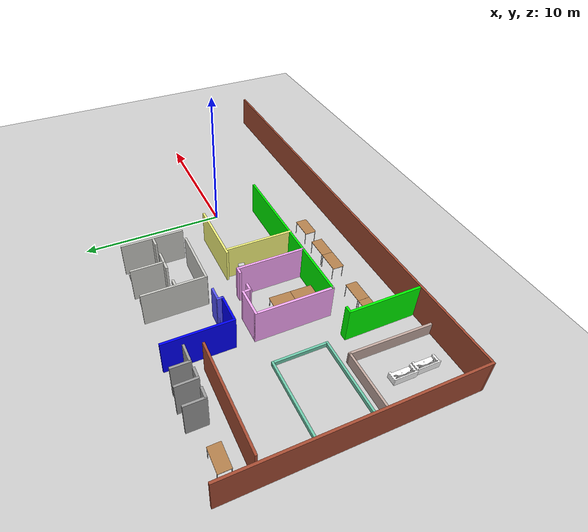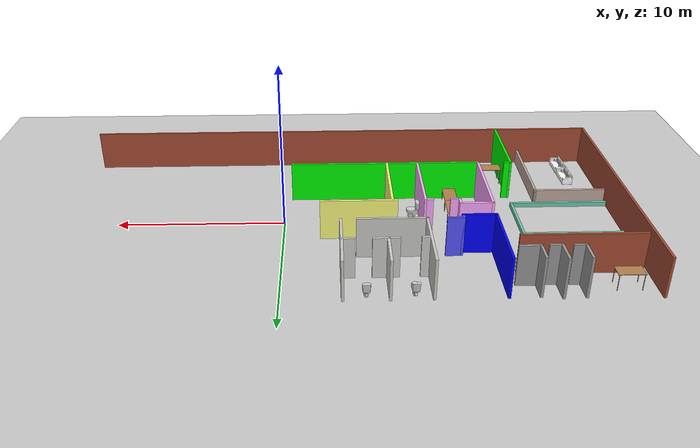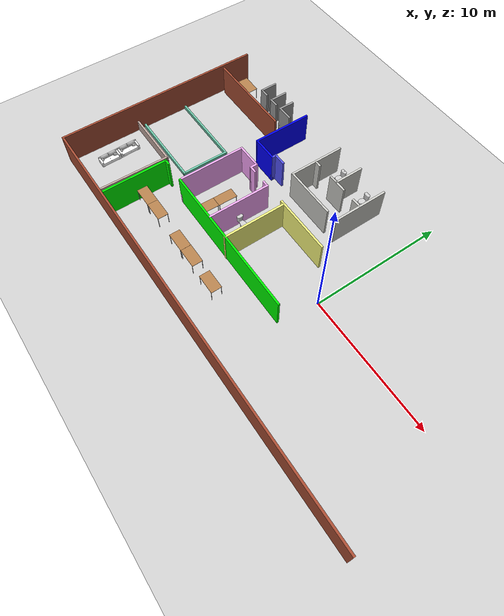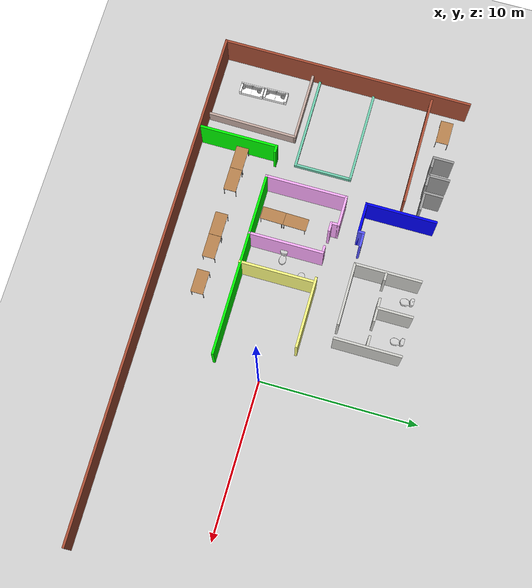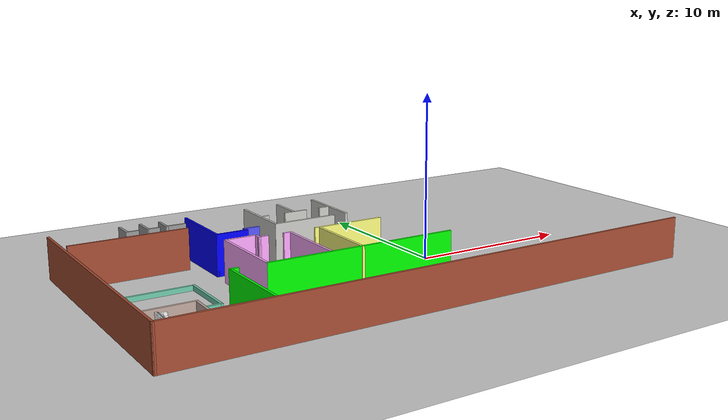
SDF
<sdf version="1.7">
 <world name="default">
  <model name="ground_plane">
   <static>1</static>
   <link name="link">
    <collision name="collision">
     <geometry><plane><normal>0 0 1</normal><size>100 100</size></plane></geometry>
     <surface>
      <contact><collide_bitmask>65535</collide_bitmask></contact>
      <friction><ode><mu>100</mu><mu2>50</mu2></ode></friction>
     </surface>
    </collision>
    <visual name="visual">
     <cast_shadows>0</cast_shadows>
     <geometry><plane><normal>0 0 1</normal><size>100 100</size></plane></geometry>
     <material>
      <script><uri>file://media/materials/scripts/gazebo.material</uri><name>Gazebo/Grey</name></script>
     </material>
    </visual>
   </link>
  </model>
  <model name="finalfinal">
   <pose>-1.52945 0.041943 0 0 -0 0</pose>
   <link name="Wall_142">
    <collision name="Wall_142_Collision">
     <geometry><box><size>5 0.15 2.5</size></box></geometry>
     <pose>0 0 1.25 0 -0 0</pose>
    </collision>
    <visual name="Wall_142_Visual">
     <pose>0 0 1.25 0 -0 0</pose>
     <geometry><box><size>5 0.15 2.5</size></box></geometry>
     <material>
      <script><uri>file://media/materials/scripts/gazebo.material</uri><name>Gazebo/Grey</name></script>
      <ambient>0 1 0 1</ambient>
     </material>
     <meta><layer>0</layer></meta>
    </visual>
    <pose>-12.5694 -5.35027 0 0 -0 1.5708</pose>
   </link>
   <link name="Wall_144">
    <collision name="Wall_144_Collision">
     <geometry><box><size>0.5 0.15 2.5</size></box></geometry>
     <pose>0 0 1.25 0 -0 0</pose>
    </collision>
    <visual name="Wall_144_Visual">
     <pose>0 0 1.25 0 -0 0</pose>
     <geometry><box><size>0.5 0.15 2.5</size></box></geometry>
     <material>
      <script><uri>file://media/materials/scripts/gazebo.material</uri><name>Gazebo/Grey</name></script>
      <ambient>0 1 0 1</ambient>
     </material>
     <meta><layer>0</layer></meta>
    </visual>
    <pose>-12.3944 -2.92527 0 0 -0 0</pose>
   </link>
   <link name="Wall_15">
    <collision name="Wall_15_Collision">
     <geometry><box><size>6.14079 0.15 0.3</size></box></geometry>
     <pose>0 0 0.15 0 -0 0</pose>
    </collision>
    <visual name="Wall_15_Visual">
     <pose>0 0 0.15 0 -0 0</pose>
     <geometry><box><size>6.14079 0.15 0.3</size></box></geometry>
     <material>
      <script><uri>file://media/materials/scripts/gazebo.material</uri><name>Gazebo/Grey</name></script>
      <ambient>0.435294 0.796078 0.67451 1</ambient>
     </material>
     <meta><layer>0</layer></meta>
    </visual>
    <pose>-15.5451 -1.65394 0 0 -0 0</pose>
   </link>
   <link name="Wall_16">
    <collision name="Wall_16_Collision">
     <geometry><box><size>3.75 0.15 0.3</size></box></geometry>
     <pose>0 0 0.15 0 -0 0</pose>
    </collision>
    <visual name="Wall_16_Visual">
     <pose>0 0 0.15 0 -0 0</pose>
     <geometry><box><size>3.75 0.15 0.3</size></box></geometry>
     <material>
      <script><uri>file://media/materials/scripts/gazebo.material</uri><name>Gazebo/Grey</name></script>
      <ambient>0.435294 0.796078 0.67451 1</ambient>
     </material>
     <meta><layer>0</layer></meta>
    </visual>
    <pose>-12.5496 0.146057 0 0 -0 1.5708</pose>
   </link>
   <link name="Wall_17">
    <collision name="Wall_17_Collision">
     <geometry><box><size>6 0.15 0.3</size></box></geometry>
     <pose>0 0 0.15 0 -0 0</pose>
    </collision>
    <visual name="Wall_17_Visual">
     <pose>0 0 0.15 0 -0 0</pose>
     <geometry><box><size>6 0.15 0.3</size></box></geometry>
     <material>
      <script><uri>file://media/materials/scripts/gazebo.material</uri><name>Gazebo/Grey</name></script>
      <ambient>0.435294 0.796078 0.67451 1</ambient>
     </material>
     <meta><layer>0</layer></meta>
    </visual>
    <pose>-15.4746 1.94606 0 0 -0 3.14159</pose>
   </link>
   <link name="Wall_19">
    <collision name="Wall_19_Collision">
     <geometry><box><size>7 0.15 2.5</size></box></geometry>
     <pose>0 0 1.25 0 -0 0</pose>
    </collision>
    <visual name="Wall_19_Visual">
     <pose>0 0 1.25 0 -0 0</pose>
     <geometry><box><size>7 0.15 2.5</size></box></geometry>
     <material>
      <script><uri>file://media/materials/scripts/gazebo.material</uri><name>Gazebo/Bricks</name></script>
      <ambient>1 1 1 1</ambient>
     </material>
     <meta><layer>0</layer></meta>
    </visual>
    <pose>-14.7516 5.60406 0 0 -0 0</pose>
   </link>
   <link name="Wall_193">
    <collision name="Wall_193_Collision">
     <geometry><box><size>4.75 0.15 2.5</size></box></geometry>
     <pose>0 0 1.25 0 -0 0</pose>
    </collision>
    <visual name="Wall_193_Visual">
     <pose>0 0 1.25 0 -0 0</pose>
     <geometry><box><size>4.75 0.15 2.5</size></box></geometry>
     <material>
      <script><uri>file://media/materials/scripts/gazebo.material</uri><name>Gazebo/Grey</name></script>
      <ambient>1 1 0.498039 1</ambient>
     </material>
     <meta><layer>0</layer></meta>
    </visual>
    <pose>-4.78968 -0.712961 0 0 -0 1.5708</pose>
   </link>
   <link name="Wall_195">
    <collision name="Wall_195_Collision">
     <geometry><box><size>4.5 0.15 2.5</size></box></geometry>
     <pose>0 0 1.25 0 -0 0</pose>
    </collision>
    <visual name="Wall_195_Visual">
     <pose>0 0 1.25 0 -0 0</pose>
     <geometry><box><size>4.5 0.15 2.5</size></box></geometry>
     <material>
      <script><uri>file://media/materials/scripts/gazebo.material</uri><name>Gazebo/Grey</name></script>
      <ambient>1 1 0.498039 1</ambient>
     </material>
     <meta><layer>0</layer></meta>
    </visual>
    <pose>-2.85714 1.69353 0 0 -0 0</pose>
   </link>
   <link name="Wall_2">
    <collision name="Wall_2_Collision">
     <geometry><box><size>16.0748 0.15 2.5</size></box></geometry>
     <pose>0 0 1.25 0 -0 0</pose>
    </collision>
    <visual name="Wall_2_Visual">
     <pose>0 0 1.25 0 -0 0</pose>
     <geometry><box><size>16.0748 0.15 2.5</size></box></geometry>
     <material>
      <script><uri>file://media/materials/scripts/gazebo.material</uri><name>Gazebo/Bricks</name></script>
      <ambient>1 1 1 1</ambient>
     </material>
     <meta><layer>0</layer></meta>
    </visual>
    <pose>-18.5896 -0 0 0 -0 -1.57357</pose>
   </link>
   <link name="Wall_207">
    <collision name="Wall_207_Collision">
     <geometry><box><size>0.4 0.15 2.5</size></box></geometry>
     <pose>0 0 1.25 0 -0 0</pose>
    </collision>
    <visual name="Wall_207_Visual">
     <pose>0 0 1.25 0 -0 0</pose>
     <geometry><box><size>0.4 0.15 2.5</size></box></geometry>
     <material>
      <script><uri>file://media/materials/scripts/gazebo.material</uri><name>Gazebo/Grey</name></script>
      <ambient>1 0.666667 1 1</ambient>
     </material>
     <meta><layer>0</layer></meta>
    </visual>
    <pose>-6.95721 1.65482 0 0 -0 0</pose>
   </link>
   <link name="Wall_21">
    <collision name="Wall_21_Collision">
     <geometry><box><size>1.34125 0.15 2.5</size></box></geometry>
     <pose>0 0 1.25 0 -0 0</pose>
    </collision>
    <visual name="Wall_21_Visual">
     <pose>0 0 1.25 0 -0 0</pose>
     <geometry><box><size>1.34125 0.15 2.5</size></box></geometry>
     <material>
      <script><uri>file://media/materials/scripts/gazebo.material</uri><name>Gazebo/Grey</name></script>
      <ambient>1 1 1 1</ambient>
     </material>
     <meta><layer>0</layer></meta>
    </visual>
    <pose>-14.509 7.26554 0 0 -0 -1.5708</pose>
   </link>
   <link name="Wall_22">
    <collision name="Wall_22_Collision">
     <geometry><box><size>0.75 0.15 2.5</size></box></geometry>
     <pose>0 0 1.25 0 -0 0</pose>
    </collision>
    <visual name="Wall_22_Visual">
     <pose>0 0 1.25 0 -0 0</pose>
     <geometry><box><size>0.75 0.15 2.5</size></box></geometry>
     <material>
      <script><uri>file://media/materials/scripts/gazebo.material</uri><name>Gazebo/Grey</name></script>
      <ambient>1 1 1 1</ambient>
     </material>
     <meta><layer>0</layer></meta>
    </visual>
    <pose>-14.209 6.66991 0 0 -0 0</pose>
   </link>
   <link name="Wall_24">
    <collision name="Wall_24_Collision">
     <geometry><box><size>1.41739 0.15 2.5</size></box></geometry>
     <pose>0 0 1.25 0 -0 0</pose>
    </collision>
    <visual name="Wall_24_Visual">
     <pose>0 0 1.25 0 -0 0</pose>
     <geometry><box><size>1.41739 0.15 2.5</size></box></geometry>
     <material>
      <script><uri>file://media/materials/scripts/gazebo.material</uri><name>Gazebo/Grey</name></script>
      <ambient>1 1 1 1</ambient>
     </material>
     <meta><layer>0</layer></meta>
    </visual>
    <pose>-13.2695 7.27315 0 0 -0 -1.5588</pose>
   </link>
   <link name="Wall_25">
    <collision name="Wall_25_Collision">
     <geometry><box><size>0.75 0.15 2.5</size></box></geometry>
     <pose>0 0 1.25 0 -0 0</pose>
    </collision>
    <visual name="Wall_25_Visual">
     <pose>0 0 1.25 0 -0 0</pose>
     <geometry><box><size>0.75 0.15 2.5</size></box></geometry>
     <material>
      <script><uri>file://media/materials/scripts/gazebo.material</uri><name>Gazebo/Grey</name></script>
      <ambient>1 1 1 1</ambient>
     </material>
     <meta><layer>0</layer></meta>
    </visual>
    <pose>-12.9467 6.6395 0 0 -0 0</pose>
   </link>
   <link name="Wall_27">
    <collision name="Wall_27_Collision">
     <geometry><box><size>1.25 0.15 2.5</size></box></geometry>
     <pose>0 0 1.25 0 -0 0</pose>
    </collision>
    <visual name="Wall_27_Visual">
     <pose>0 0 1.25 0 -0 0</pose>
     <geometry><box><size>1.25 0.15 2.5</size></box></geometry>
     <material>
      <script><uri>file://media/materials/scripts/gazebo.material</uri><name>Gazebo/Grey</name></script>
      <ambient>1 1 1 1</ambient>
     </material>
     <meta><layer>0</layer></meta>
    </visual>
    <pose>-12.1364 7.21991 0 0 -0 -1.5708</pose>
   </link>
   <link name="Wall_278">
    <collision name="Wall_278_Collision">
     <geometry><box><size>11.75 0.15 2.5</size></box></geometry>
     <pose>0 0 1.25 0 -0 0</pose>
    </collision>
    <visual name="Wall_278_Visual">
     <pose>0 0 1.25 0 -0 0</pose>
     <geometry><box><size>11.75 0.15 2.5</size></box></geometry>
     <material>
      <script><uri>file://media/materials/scripts/gazebo.material</uri><name>Gazebo/Grey</name></script>
      <ambient>0 1 0 1</ambient>
     </material>
     <meta><layer>0</layer></meta>
    </visual>
    <pose>-4.71756 -2.97919 0 0 -0 0</pose>
   </link>
   <link name="Wall_28">
    <collision name="Wall_28_Collision">
     <geometry><box><size>1.25 0.15 2.5</size></box></geometry>
     <pose>0 0 1.25 0 -0 0</pose>
    </collision>
    <visual name="Wall_28_Visual">
     <pose>0 0 1.25 0 -0 0</pose>
     <geometry><box><size>1.25 0.15 2.5</size></box></geometry>
     <material>
      <script><uri>file://media/materials/scripts/gazebo.material</uri><name>Gazebo/Grey</name></script>
      <ambient>1 1 1 1</ambient>
     </material>
     <meta><layer>0</layer></meta>
    </visual>
    <pose>-11.5864 6.66991 0 0 -0 0</pose>
   </link>
   <link name="Wall_30">
    <collision name="Wall_30_Collision">
     <geometry><box><size>4.54 0.15 2.5</size></box></geometry>
     <pose>0 0 1.25 0 -0 0</pose>
    </collision>
    <visual name="Wall_30_Visual">
     <pose>0 0 1.25 0 -0 0</pose>
     <geometry><box><size>4.54 0.15 2.5</size></box></geometry>
     <material>
      <script><uri>file://media/materials/scripts/gazebo.material</uri><name>Gazebo/Grey</name></script>
      <ambient>0 0 1 1</ambient>
     </material>
     <meta><layer>0</layer></meta>
    </visual>
    <pose>-10.4483 5.62054 0 0 -0 -1.5708</pose>
   </link>
   <link name="Wall_32">
    <collision name="Wall_32_Collision">
     <geometry><box><size>2.013 0.15 2.5</size></box></geometry>
     <pose>0 0 1.25 0 -0 0</pose>
    </collision>
    <visual name="Wall_32_Visual">
     <pose>0 0 1.25 0 -0 0</pose>
     <geometry><box><size>2.013 0.15 2.5</size></box></geometry>
     <material>
      <script><uri>file://media/materials/scripts/gazebo.material</uri><name>Gazebo/Grey</name></script>
      <ambient>0 0 1 1</ambient>
     </material>
     <meta><layer>0</layer></meta>
    </visual>
    <pose>-9.51676 3.42554 0 0 -0 0</pose>
   </link>
   <link name="Wall_34">
    <collision name="Wall_34_Collision">
     <geometry><box><size>5.25 0.15 2.5</size></box></geometry>
     <pose>0 0 1.25 0 -0 0</pose>
    </collision>
    <visual name="Wall_34_Visual">
     <pose>0 0 1.25 0 -0 0</pose>
     <geometry><box><size>5.25 0.15 2.5</size></box></geometry>
     <material>
      <script><uri>file://media/materials/scripts/gazebo.material</uri><name>Gazebo/Grey</name></script>
      <ambient>1 0.666667 1 1</ambient>
     </material>
     <meta><layer>0</layer></meta>
    </visual>
    <pose>-10.5176 -0.42919 0 0 -0 -1.5708</pose>
   </link>
   <link name="Wall_37">
    <collision name="Wall_37_Collision">
     <geometry><box><size>4.75 0.15 2.5</size></box></geometry>
     <pose>0 0 1.25 0 -0 0</pose>
    </collision>
    <visual name="Wall_37_Visual">
     <pose>0 0 1.25 0 -0 0</pose>
     <geometry><box><size>4.75 0.15 2.5</size></box></geometry>
     <material>
      <script><uri>file://media/materials/scripts/gazebo.material</uri><name>Gazebo/Grey</name></script>
      <ambient>1 0.666667 1 1</ambient>
     </material>
     <meta><layer>0</layer></meta>
    </visual>
    <pose>-6.69727 -0.646609 0 0 -0 1.5708</pose>
   </link>
   <link name="Wall_4">
    <collision name="Wall_4_Collision">
     <geometry><box><size>32.9457 0.15 2.5</size></box></geometry>
     <pose>0 0 1.25 0 -0 0</pose>
    </collision>
    <visual name="Wall_4_Visual">
     <pose>0 0 1.25 0 -0 0</pose>
     <geometry><box><size>32.9457 0.15 2.5</size></box></geometry>
     <material>
      <script><uri>file://media/materials/scripts/gazebo.material</uri><name>Gazebo/Bricks</name></script>
      <ambient>1 1 1 1</ambient>
     </material>
     <meta><layer>0</layer></meta>
    </visual>
    <pose>-2.21419 -7.92821 0 0 -0 0.002078</pose>
   </link>
   <link name="Wall_48">
    <collision name="Wall_48_Collision">
     <geometry><box><size>2 0.15 2.5</size></box></geometry>
     <pose>0 0 1.25 0 -0 0</pose>
    </collision>
    <visual name="Wall_48_Visual">
     <pose>0 0 1.25 0 -0 0</pose>
     <geometry><box><size>2 0.15 2.5</size></box></geometry>
     <material>
      <script><uri>file://media/materials/scripts/gazebo.material</uri><name>Gazebo/Grey</name></script>
      <ambient>1 0.666667 1 1</ambient>
     </material>
     <meta><layer>0</layer></meta>
    </visual>
    <pose>-9.59256 2.12081 0 0 -0 0</pose>
   </link>
   <link name="Wall_49">
    <collision name="Wall_49_Collision">
     <geometry><box><size>0.61 0.15 2.5</size></box></geometry>
     <pose>0 0 1.25 0 -0 0</pose>
    </collision>
    <visual name="Wall_49_Visual">
     <pose>0 0 1.25 0 -0 0</pose>
     <geometry><box><size>0.61 0.15 2.5</size></box></geometry>
     <material>
      <script><uri>file://media/materials/scripts/gazebo.material</uri><name>Gazebo/Grey</name></script>
      <ambient>1 0.666667 1 1</ambient>
     </material>
     <meta><layer>0</layer></meta>
    </visual>
    <pose>-8.66756 1.89081 0 0 -0 -1.5708</pose>
   </link>
   <link name="Wall_50">
    <collision name="Wall_50_Collision">
     <geometry><box><size>0.62 0.15 2.5</size></box></geometry>
     <pose>0 0 1.25 0 -0 0</pose>
    </collision>
    <visual name="Wall_50_Visual">
     <pose>0 0 1.25 0 -0 0</pose>
     <geometry><box><size>0.62 0.15 2.5</size></box></geometry>
     <material>
      <script><uri>file://media/materials/scripts/gazebo.material</uri><name>Gazebo/Grey</name></script>
      <ambient>1 0.666667 1 1</ambient>
     </material>
     <meta><layer>0</layer></meta>
    </visual>
    <pose>-8.43256 1.66097 0 0 -0 0.000669</pose>
   </link>
   <link name="Wall_52">
    <collision name="Wall_52_Collision">
     <geometry><box><size>0.45 0.15 2.5</size></box></geometry>
     <pose>0 0 1.25 0 -0 0</pose>
    </collision>
    <visual name="Wall_52_Visual">
     <pose>0 0 1.25 0 -0 0</pose>
     <geometry><box><size>0.45 0.15 2.5</size></box></geometry>
     <material>
      <script><uri>file://media/materials/scripts/gazebo.material</uri><name>Gazebo/Grey</name></script>
      <ambient>0.333333 0.333333 1 1</ambient>
     </material>
     <meta><layer>0</layer></meta>
    </visual>
    <pose>-8.58526 3.57554 0 0 -0 1.5708</pose>
   </link>
   <link name="Wall_53">
    <collision name="Wall_53_Collision">
     <geometry><box><size>1 0.15 2.5</size></box></geometry>
     <pose>0 0 1.25 0 -0 0</pose>
    </collision>
    <visual name="Wall_53_Visual">
     <pose>0 0 1.25 0 -0 0</pose>
     <geometry><box><size>1 0.15 2.5</size></box></geometry>
     <material>
      <script><uri>file://media/materials/scripts/gazebo.material</uri><name>Gazebo/Grey</name></script>
      <ambient>0.333333 0.333333 1 1</ambient>
     </material>
     <meta><layer>0</layer></meta>
    </visual>
    <pose>-8.16026 3.72554 0 0 -0 0</pose>
   </link>
   <link name="Wall_61">
    <collision name="Wall_61_Collision">
     <geometry><box><size>4.25 0.15 2.5</size></box></geometry>
     <pose>0 0 1.25 0 -0 0</pose>
    </collision>
    <visual name="Wall_61_Visual">
     <pose>0 0 1.25 0 -0 0</pose>
     <geometry><box><size>4.25 0.15 2.5</size></box></geometry>
     <material>
      <script><uri>file://media/materials/scripts/gazebo.material</uri><name>Gazebo/CeilingTiled</name></script>
      <ambient>0.333333 0.333333 1 1</ambient>
     </material>
     <meta><layer>0</layer></meta>
    </visual>
    <pose>-6.55084 5.78712 0 0 -0 -1.5708</pose>
   </link>
   <link name="Wall_67">
    <collision name="Wall_67_Collision">
     <geometry><box><size>4 0.15 2.5</size></box></geometry>
     <pose>0 0 1.25 0 -0 0</pose>
    </collision>
    <visual name="Wall_67_Visual">
     <pose>0 0 1.25 0 -0 0</pose>
     <geometry><box><size>4 0.15 2.5</size></box></geometry>
     <material>
      <script><uri>file://media/materials/scripts/gazebo.material</uri><name>Gazebo/CeilingTiled</name></script>
      <ambient>1 1 1 1</ambient>
     </material>
     <meta><layer>0</layer></meta>
    </visual>
    <pose>-4.62095 3.71659 0 0 -0 0</pose>
   </link>
   <link name="Wall_71">
    <collision name="Wall_71_Collision">
     <geometry><box><size>4.25 0.15 2.5</size></box></geometry>
     <pose>0 0 1.25 0 -0 0</pose>
    </collision>
    <visual name="Wall_71_Visual">
     <pose>0 0 1.25 0 -0 0</pose>
     <geometry><box><size>4.25 0.15 2.5</size></box></geometry>
     <material>
      <script><uri>file://media/materials/scripts/gazebo.material</uri><name>Gazebo/CeilingTiled</name></script>
      <ambient>0.666667 1 0.498039 1</ambient>
     </material>
     <meta><layer>0</layer></meta>
    </visual>
    <pose>-1.76956 5.77758 0 0 -0 -1.5708</pose>
   </link>
   <link name="Wall_75">
    <collision name="Wall_75_Collision">
     <geometry><box><size>2.25 0.15 2.5</size></box></geometry>
     <pose>0 0 1.25 0 -0 0</pose>
    </collision>
    <visual name="Wall_75_Visual">
     <pose>0 0 1.25 0 -0 0</pose>
     <geometry><box><size>2.25 0.15 2.5</size></box></geometry>
     <material>
      <script><uri>file://media/materials/scripts/gazebo.material</uri><name>Gazebo/CeilingTiled</name></script>
      <ambient>1 1 1 1</ambient>
     </material>
     <meta><layer>0</layer></meta>
    </visual>
    <pose>-4.2629 6.81197 0 0 -0 -1.5708</pose>
   </link>
   <link name="Wall_77">
    <collision name="Wall_77_Collision">
     <geometry><box><size>1.5 0.15 2.5</size></box></geometry>
     <pose>0 0 1.25 0 -0 0</pose>
    </collision>
    <visual name="Wall_77_Visual">
     <pose>0 0 1.25 0 -0 0</pose>
     <geometry><box><size>1.5 0.15 2.5</size></box></geometry>
     <material>
      <script><uri>file://media/materials/scripts/gazebo.material</uri><name>Gazebo/CeilingTiled</name></script>
      <ambient>1 1 1 1</ambient>
     </material>
     <meta><layer>0</layer></meta>
    </visual>
    <pose>-4.15535 5.72974 0 0 -0 0</pose>
   </link>
   <link name="Wall_79">
    <collision name="Wall_79_Collision">
     <geometry><box><size>0.5 0.15 2.5</size></box></geometry>
     <pose>0 0 1.25 0 -0 0</pose>
    </collision>
    <visual name="Wall_79_Visual">
     <pose>0 0 1.25 0 -0 0</pose>
     <geometry><box><size>0.5 0.15 2.5</size></box></geometry>
     <material>
      <script><uri>file://media/materials/scripts/gazebo.material</uri><name>Gazebo/CeilingTiled</name></script>
      <ambient>1 1 1 1</ambient>
     </material>
     <meta><layer>0</layer></meta>
    </visual>
    <pose>-6.27172 5.69535 0 0 -0 0</pose>
   </link>
   <link name="Wall_8">
    <collision name="Wall_8_Collision">
     <geometry><box><size>4.5 0.15 0.9</size></box></geometry>
     <pose>0 0 0.45 0 -0 0</pose>
    </collision>
    <visual name="Wall_8_Visual">
     <pose>0 0 0.45 0 -0 0</pose>
     <geometry><box><size>4.5 0.15 0.9</size></box></geometry>
     <material>
      <script><uri>file://media/materials/scripts/gazebo.material</uri><name>Gazebo/Grey</name></script>
      <ambient>0.760784 0.662745 0.627451 1</ambient>
     </material>
     <meta><layer>0</layer></meta>
    </visual>
    <pose>-16.2956 -2.16494 0 0 -0 0</pose>
   </link>
   <link name="Wall_81">
    <collision name="Wall_81_Collision">
     <geometry><box><size>0.75 0.15 2.5</size></box></geometry>
     <pose>0 0 1.25 0 -0 0</pose>
    </collision>
    <visual name="Wall_81_Visual">
     <pose>0 0 1.25 0 -0 0</pose>
     <geometry><box><size>0.75 0.15 2.5</size></box></geometry>
     <material>
      <script><uri>file://media/materials/scripts/gazebo.material</uri><name>Gazebo/CeilingTiled</name></script>
      <ambient>1 1 1 1</ambient>
     </material>
     <meta><layer>0</layer></meta>
    </visual>
    <pose>-2.12115 5.72974 0 0 -0 3.14159</pose>
   </link>
   <link name="Wall_9">
    <collision name="Wall_9_Collision">
     <geometry><box><size>5.75077 0.15 0.9</size></box></geometry>
     <pose>0 0 0.45 0 -0 0</pose>
    </collision>
    <visual name="Wall_9_Visual">
     <pose>0 0 0.45 0 -0 0</pose>
     <geometry><box><size>5.75077 0.15 0.9</size></box></geometry>
     <material>
      <script><uri>file://media/materials/scripts/gazebo.material</uri><name>Gazebo/Grey</name></script>
      <ambient>0.760784 0.662745 0.627451 1</ambient>
     </material>
     <meta><layer>0</layer></meta>
    </visual>
    <pose>-14.1671 -4.96494 0 0 -0 -1.5874</pose>
   </link>
   <static>1</static>
  </model>
  <model name="table_0">
   <static>1</static>
   <link name="link">
    <collision name="surface">
     <pose>0 0 1 0 -0 0</pose>
     <geometry><box><size>1.5 0.8 0.03</size></box></geometry>
     <surface><friction><ode><mu>0.6</mu><mu2>0.6</mu2></ode></friction></surface>
    </collision>
    <visual name="visual1">
     <pose>0 0 1 0 -0 0</pose>
     <geometry><box><size>1.5 0.8 0.03</size></box></geometry>
     <material>
      <script><uri>file://media/materials/scripts/gazebo.material</uri><name>Gazebo/Wood</name></script>
     </material>
    </visual>
    <collision name="front_left_leg">
     <pose>0.68 0.38 0.5 0 -0 0</pose>
     <geometry><cylinder><radius>0.02</radius><length>1</length></cylinder></geometry>
    </collision>
    <visual name="front_left_leg">
     <pose>0.68 0.38 0.5 0 -0 0</pose>
     <geometry><cylinder><radius>0.02</radius><length>1</length></cylinder></geometry>
     <material>
      <script><uri>file://media/materials/scripts/gazebo.material</uri><name>Gazebo/Grey</name></script>
     </material>
    </visual>
    <collision name="front_right_leg">
     <pose>0.68 -0.38 0.5 0 -0 0</pose>
     <geometry><cylinder><radius>0.02</radius><length>1</length></cylinder></geometry>
    </collision>
    <visual name="front_right_leg">
     <pose>0.68 -0.38 0.5 0 -0 0</pose>
     <geometry><cylinder><radius>0.02</radius><length>1</length></cylinder></geometry>
     <material>
      <script><uri>file://media/materials/scripts/gazebo.material</uri><name>Gazebo/Grey</name></script>
     </material>
    </visual>
    <collision name="back_right_leg">
     <pose>-0.68 -0.38 0.5 0 -0 0</pose>
     <geometry><cylinder><radius>0.02</radius><length>1</length></cylinder></geometry>
    </collision>
    <visual name="back_right_leg">
     <pose>-0.68 -0.38 0.5 0 -0 0</pose>
     <geometry><cylinder><radius>0.02</radius><length>1</length></cylinder></geometry>
     <material>
      <script><uri>file://media/materials/scripts/gazebo.material</uri><name>Gazebo/Grey</name></script>
     </material>
    </visual>
    <collision name="back_left_leg">
     <pose>-0.68 0.38 0.5 0 -0 0</pose>
     <geometry><cylinder><radius>0.02</radius><length>1</length></cylinder></geometry>
    </collision>
    <visual name="back_left_leg">
     <pose>-0.68 0.38 0.5 0 -0 0</pose>
     <geometry><cylinder><radius>0.02</radius><length>1</length></cylinder></geometry>
     <material>
      <script><uri>file://media/materials/scripts/gazebo.material</uri><name>Gazebo/Grey</name></script>
     </material>
    </visual>
   </link>
   <pose>-11.7522 -5.07549 0 0 -0 0</pose>
  </model>
  <model name="table_1">
   <static>1</static>
   <link name="table_1::link">
    <collision name="surface">
     <pose>0 0 1 0 -0 0</pose>
     <geometry><box><size>1.5 0.8 0.03</size></box></geometry>
     <surface><friction><ode><mu>0.6</mu><mu2>0.6</mu2></ode></friction></surface>
    </collision>
    <visual name="visual1">
     <pose>0 0 1 0 -0 0</pose>
     <geometry><box><size>1.5 0.8 0.03</size></box></geometry>
     <material>
      <script><uri>file://media/materials/scripts/gazebo.material</uri><name>Gazebo/Wood</name></script>
     </material>
    </visual>
    <collision name="front_left_leg">
     <pose>0.68 0.38 0.5 0 -0 0</pose>
     <geometry><cylinder><radius>0.02</radius><length>1</length></cylinder></geometry>
    </collision>
    <visual name="front_left_leg">
     <pose>0.68 0.38 0.5 0 -0 0</pose>
     <geometry><cylinder><radius>0.02</radius><length>1</length></cylinder></geometry>
     <material>
      <script><uri>file://media/materials/scripts/gazebo.material</uri><name>Gazebo/Grey</name></script>
     </material>
    </visual>
    <collision name="front_right_leg">
     <pose>0.68 -0.38 0.5 0 -0 0</pose>
     <geometry><cylinder><radius>0.02</radius><length>1</length></cylinder></geometry>
    </collision>
    <visual name="front_right_leg">
     <pose>0.68 -0.38 0.5 0 -0 0</pose>
     <geometry><cylinder><radius>0.02</radius><length>1</length></cylinder></geometry>
     <material>
      <script><uri>file://media/materials/scripts/gazebo.material</uri><name>Gazebo/Grey</name></script>
     </material>
    </visual>
    <collision name="back_right_leg">
     <pose>-0.68 -0.38 0.5 0 -0 0</pose>
     <geometry><cylinder><radius>0.02</radius><length>1</length></cylinder></geometry>
    </collision>
    <visual name="back_right_leg">
     <pose>-0.68 -0.38 0.5 0 -0 0</pose>
     <geometry><cylinder><radius>0.02</radius><length>1</length></cylinder></geometry>
     <material>
      <script><uri>file://media/materials/scripts/gazebo.material</uri><name>Gazebo/Grey</name></script>
     </material>
    </visual>
    <collision name="back_left_leg">
     <pose>-0.68 0.38 0.5 0 -0 0</pose>
     <geometry><cylinder><radius>0.02</radius><length>1</length></cylinder></geometry>
    </collision>
    <visual name="back_left_leg">
     <pose>-0.68 0.38 0.5 0 -0 0</pose>
     <geometry><cylinder><radius>0.02</radius><length>1</length></cylinder></geometry>
     <material>
      <script><uri>file://media/materials/scripts/gazebo.material</uri><name>Gazebo/Grey</name></script>
     </material>
    </visual>
   </link>
   <pose>-8.68226 -5.09947 0 0 -0 0</pose>
  </model>
  <model name="table_2">
   <static>1</static>
   <link name="link">
    <collision name="surface">
     <pose>0 0 1 0 -0 0</pose>
     <geometry><box><size>1.5 0.8 0.03</size></box></geometry>
     <surface><friction><ode><mu>0.6</mu><mu2>0.6</mu2></ode></friction></surface>
    </collision>
    <visual name="visual1">
     <pose>0 0 1 0 -0 0</pose>
     <geometry><box><size>1.5 0.8 0.03</size></box></geometry>
     <material>
      <script><uri>file://media/materials/scripts/gazebo.material</uri><name>Gazebo/Wood</name></script>
     </material>
    </visual>
    <collision name="front_left_leg">
     <pose>0.68 0.38 0.5 0 -0 0</pose>
     <geometry><cylinder><radius>0.02</radius><length>1</length></cylinder></geometry>
    </collision>
    <visual name="front_left_leg">
     <pose>0.68 0.38 0.5 0 -0 0</pose>
     <geometry><cylinder><radius>0.02</radius><length>1</length></cylinder></geometry>
     <material>
      <script><uri>file://media/materials/scripts/gazebo.material</uri><name>Gazebo/Grey</name></script>
     </material>
    </visual>
    <collision name="front_right_leg">
     <pose>0.68 -0.38 0.5 0 -0 0</pose>
     <geometry><cylinder><radius>0.02</radius><length>1</length></cylinder></geometry>
    </collision>
    <visual name="front_right_leg">
     <pose>0.68 -0.38 0.5 0 -0 0</pose>
     <geometry><cylinder><radius>0.02</radius><length>1</length></cylinder></geometry>
     <material>
      <script><uri>file://media/materials/scripts/gazebo.material</uri><name>Gazebo/Grey</name></script>
     </material>
    </visual>
    <collision name="back_right_leg">
     <pose>-0.68 -0.38 0.5 0 -0 0</pose>
     <geometry><cylinder><radius>0.02</radius><length>1</length></cylinder></geometry>
    </collision>
    <visual name="back_right_leg">
     <pose>-0.68 -0.38 0.5 0 -0 0</pose>
     <geometry><cylinder><radius>0.02</radius><length>1</length></cylinder></geometry>
     <material>
      <script><uri>file://media/materials/scripts/gazebo.material</uri><name>Gazebo/Grey</name></script>
     </material>
    </visual>
    <collision name="back_left_leg">
     <pose>-0.68 0.38 0.5 0 -0 0</pose>
     <geometry><cylinder><radius>0.02</radius><length>1</length></cylinder></geometry>
    </collision>
    <visual name="back_left_leg">
     <pose>-0.68 0.38 0.5 0 -0 0</pose>
     <geometry><cylinder><radius>0.02</radius><length>1</length></cylinder></geometry>
     <material>
      <script><uri>file://media/materials/scripts/gazebo.material</uri><name>Gazebo/Grey</name></script>
     </material>
    </visual>
   </link>
   <pose>-7.18055 -5.09621 0 0 -0 0</pose>
  </model>
  <model name="table_3">
   <static>1</static>
   <link name="link">
    <collision name="surface">
     <pose>0 0 1 0 -0 0</pose>
     <geometry><box><size>1.5 0.8 0.03</size></box></geometry>
     <surface><friction><ode><mu>0.6</mu><mu2>0.6</mu2></ode></friction></surface>
    </collision>
    <visual name="visual1">
     <pose>0 0 1 0 -0 0</pose>
     <geometry><box><size>1.5 0.8 0.03</size></box></geometry>
     <material>
      <script><uri>file://media/materials/scripts/gazebo.material</uri><name>Gazebo/Wood</name></script>
     </material>
    </visual>
    <collision name="front_left_leg">
     <pose>0.68 0.38 0.5 0 -0 0</pose>
     <geometry><cylinder><radius>0.02</radius><length>1</length></cylinder></geometry>
    </collision>
    <visual name="front_left_leg">
     <pose>0.68 0.38 0.5 0 -0 0</pose>
     <geometry><cylinder><radius>0.02</radius><length>1</length></cylinder></geometry>
     <material>
      <script><uri>file://media/materials/scripts/gazebo.material</uri><name>Gazebo/Grey</name></script>
     </material>
    </visual>
    <collision name="front_right_leg">
     <pose>0.68 -0.38 0.5 0 -0 0</pose>
     <geometry><cylinder><radius>0.02</radius><length>1</length></cylinder></geometry>
    </collision>
    <visual name="front_right_leg">
     <pose>0.68 -0.38 0.5 0 -0 0</pose>
     <geometry><cylinder><radius>0.02</radius><length>1</length></cylinder></geometry>
     <material>
      <script><uri>file://media/materials/scripts/gazebo.material</uri><name>Gazebo/Grey</name></script>
     </material>
    </visual>
    <collision name="back_right_leg">
     <pose>-0.68 -0.38 0.5 0 -0 0</pose>
     <geometry><cylinder><radius>0.02</radius><length>1</length></cylinder></geometry>
    </collision>
    <visual name="back_right_leg">
     <pose>-0.68 -0.38 0.5 0 -0 0</pose>
     <geometry><cylinder><radius>0.02</radius><length>1</length></cylinder></geometry>
     <material>
      <script><uri>file://media/materials/scripts/gazebo.material</uri><name>Gazebo/Grey</name></script>
     </material>
    </visual>
    <collision name="back_left_leg">
     <pose>-0.68 0.38 0.5 0 -0 0</pose>
     <geometry><cylinder><radius>0.02</radius><length>1</length></cylinder></geometry>
    </collision>
    <visual name="back_left_leg">
     <pose>-0.68 0.38 0.5 0 -0 0</pose>
     <geometry><cylinder><radius>0.02</radius><length>1</length></cylinder></geometry>
     <material>
      <script><uri>file://media/materials/scripts/gazebo.material</uri><name>Gazebo/Grey</name></script>
     </material>
    </visual>
   </link>
   <pose>-4.80715 -5.1233 0 0 -0 0</pose>
  </model>
  <model name="table_4">
   <static>1</static>
   <link name="link">
    <collision name="surface">
     <pose>0 0 1 0 -0 0</pose>
     <geometry><box><size>1.5 0.8 0.03</size></box></geometry>
     <surface><friction><ode><mu>0.6</mu><mu2>0.6</mu2></ode></friction></surface>
    </collision>
    <visual name="visual1">
     <pose>0 0 1 0 -0 0</pose>
     <geometry><box><size>1.5 0.8 0.03</size></box></geometry>
     <material>
      <script><uri>file://media/materials/scripts/gazebo.material</uri><name>Gazebo/Wood</name></script>
     </material>
    </visual>
    <collision name="front_left_leg">
     <pose>0.68 0.38 0.5 0 -0 0</pose>
     <geometry><cylinder><radius>0.02</radius><length>1</length></cylinder></geometry>
    </collision>
    <visual name="front_left_leg">
     <pose>0.68 0.38 0.5 0 -0 0</pose>
     <geometry><cylinder><radius>0.02</radius><length>1</length></cylinder></geometry>
     <material>
      <script><uri>file://media/materials/scripts/gazebo.material</uri><name>Gazebo/Grey</name></script>
     </material>
    </visual>
    <collision name="front_right_leg">
     <pose>0.68 -0.38 0.5 0 -0 0</pose>
     <geometry><cylinder><radius>0.02</radius><length>1</length></cylinder></geometry>
    </collision>
    <visual name="front_right_leg">
     <pose>0.68 -0.38 0.5 0 -0 0</pose>
     <geometry><cylinder><radius>0.02</radius><length>1</length></cylinder></geometry>
     <material>
      <script><uri>file://media/materials/scripts/gazebo.material</uri><name>Gazebo/Grey</name></script>
     </material>
    </visual>
    <collision name="back_right_leg">
     <pose>-0.68 -0.38 0.5 0 -0 0</pose>
     <geometry><cylinder><radius>0.02</radius><length>1</length></cylinder></geometry>
    </collision>
    <visual name="back_right_leg">
     <pose>-0.68 -0.38 0.5 0 -0 0</pose>
     <geometry><cylinder><radius>0.02</radius><length>1</length></cylinder></geometry>
     <material>
      <script><uri>file://media/materials/scripts/gazebo.material</uri><name>Gazebo/Grey</name></script>
     </material>
    </visual>
    <collision name="back_left_leg">
     <pose>-0.68 0.38 0.5 0 -0 0</pose>
     <geometry><cylinder><radius>0.02</radius><length>1</length></cylinder></geometry>
    </collision>
    <visual name="back_left_leg">
     <pose>-0.68 0.38 0.5 0 -0 0</pose>
     <geometry><cylinder><radius>0.02</radius><length>1</length></cylinder></geometry>
     <material>
      <script><uri>file://media/materials/scripts/gazebo.material</uri><name>Gazebo/Grey</name></script>
     </material>
    </visual>
   </link>
   <pose>-18.4735 6.99427 0 0 -0 0</pose>
  </model>
  <model name="table_0_clone">
   <static>1</static>
   <link name="link">
    <collision name="surface">
     <pose>0 0 1 0 -0 0</pose>
     <geometry><box><size>1.5 0.8 0.03</size></box></geometry>
     <surface><friction><ode><mu>0.6</mu><mu2>0.6</mu2></ode></friction></surface>
    </collision>
    <visual name="visual1">
     <pose>0 0 1 0 -0 0</pose>
     <geometry><box><size>1.5 0.8 0.03</size></box></geometry>
     <material>
      <script><uri>file://media/materials/scripts/gazebo.material</uri><name>Gazebo/Wood</name></script>
     </material>
    </visual>
    <collision name="front_left_leg">
     <pose>0.68 0.38 0.5 0 -0 0</pose>
     <geometry><cylinder><radius>0.02</radius><length>1</length></cylinder></geometry>
    </collision>
    <visual name="front_left_leg">
     <pose>0.68 0.38 0.5 0 -0 0</pose>
     <geometry><cylinder><radius>0.02</radius><length>1</length></cylinder></geometry>
     <material>
      <script><uri>file://media/materials/scripts/gazebo.material</uri><name>Gazebo/Grey</name></script>
     </material>
    </visual>
    <collision name="front_right_leg">
     <pose>0.68 -0.38 0.5 0 -0 0</pose>
     <geometry><cylinder><radius>0.02</radius><length>1</length></cylinder></geometry>
    </collision>
    <visual name="front_right_leg">
     <pose>0.68 -0.38 0.5 0 -0 0</pose>
     <geometry><cylinder><radius>0.02</radius><length>1</length></cylinder></geometry>
     <material>
      <script><uri>file://media/materials/scripts/gazebo.material</uri><name>Gazebo/Grey</name></script>
     </material>
    </visual>
    <collision name="back_right_leg">
     <pose>-0.68 -0.38 0.5 0 -0 0</pose>
     <geometry><cylinder><radius>0.02</radius><length>1</length></cylinder></geometry>
    </collision>
    <visual name="back_right_leg">
     <pose>-0.68 -0.38 0.5 0 -0 0</pose>
     <geometry><cylinder><radius>0.02</radius><length>1</length></cylinder></geometry>
     <material>
      <script><uri>file://media/materials/scripts/gazebo.material</uri><name>Gazebo/Grey</name></script>
     </material>
    </visual>
    <collision name="back_left_leg">
     <pose>-0.68 0.38 0.5 0 -0 0</pose>
     <geometry><cylinder><radius>0.02</radius><length>1</length></cylinder></geometry>
    </collision>
    <visual name="back_left_leg">
     <pose>-0.68 0.38 0.5 0 -0 0</pose>
     <geometry><cylinder><radius>0.02</radius><length>1</length></cylinder></geometry>
     <material>
      <script><uri>file://media/materials/scripts/gazebo.material</uri><name>Gazebo/Grey</name></script>
     </material>
    </visual>
   </link>
   <pose>-13.254 -5.07598 0 0 -0 0</pose>
  </model>
  <model name="table_clone">
   <static>1</static>
   <link name="link">
    <collision name="surface">
     <pose>0 0 1 0 -0 0</pose>
     <geometry><box><size>1.5 0.8 0.03</size></box></geometry>
     <surface><friction><ode><mu>0.6</mu><mu2>0.6</mu2></ode></friction></surface>
    </collision>
    <visual name="visual1">
     <pose>0 0 1 0 -0 0</pose>
     <geometry><box><size>1.5 0.8 0.03</size></box></geometry>
     <material>
      <script><uri>file://media/materials/scripts/gazebo.material</uri><name>Gazebo/Wood</name></script>
     </material>
    </visual>
    <collision name="front_left_leg">
     <pose>0.68 0.38 0.5 0 -0 0</pose>
     <geometry><cylinder><radius>0.02</radius><length>1</length></cylinder></geometry>
    </collision>
    <visual name="front_left_leg">
     <pose>0.68 0.38 0.5 0 -0 0</pose>
     <geometry><cylinder><radius>0.02</radius><length>1</length></cylinder></geometry>
     <material>
      <script><uri>file://media/materials/scripts/gazebo.material</uri><name>Gazebo/Grey</name></script>
     </material>
    </visual>
    <collision name="front_right_leg">
     <pose>0.68 -0.38 0.5 0 -0 0</pose>
     <geometry><cylinder><radius>0.02</radius><length>1</length></cylinder></geometry>
    </collision>
    <visual name="front_right_leg">
     <pose>0.68 -0.38 0.5 0 -0 0</pose>
     <geometry><cylinder><radius>0.02</radius><length>1</length></cylinder></geometry>
     <material>
      <script><uri>file://media/materials/scripts/gazebo.material</uri><name>Gazebo/Grey</name></script>
     </material>
    </visual>
    <collision name="back_right_leg">
     <pose>-0.68 -0.38 0.5 0 -0 0</pose>
     <geometry><cylinder><radius>0.02</radius><length>1</length></cylinder></geometry>
    </collision>
    <visual name="back_right_leg">
     <pose>-0.68 -0.38 0.5 0 -0 0</pose>
     <geometry><cylinder><radius>0.02</radius><length>1</length></cylinder></geometry>
     <material>
      <script><uri>file://media/materials/scripts/gazebo.material</uri><name>Gazebo/Grey</name></script>
     </material>
    </visual>
    <collision name="back_left_leg">
     <pose>-0.68 0.38 0.5 0 -0 0</pose>
     <geometry><cylinder><radius>0.02</radius><length>1</length></cylinder></geometry>
    </collision>
    <visual name="back_left_leg">
     <pose>-0.68 0.38 0.5 0 -0 0</pose>
     <geometry><cylinder><radius>0.02</radius><length>1</length></cylinder></geometry>
     <material>
      <script><uri>file://media/materials/scripts/gazebo.material</uri><name>Gazebo/Grey</name></script>
     </material>
    </visual>
   </link>
   <pose>-10.2524 -2.01312 -0.3 0 -0 1.55</pose>
  </model>
  <model name="table_clone_clone">
   <static>1</static>
   <link name="link">
    <collision name="surface">
     <pose>0 0 1 0 -0 0</pose>
     <geometry><box><size>1.5 0.8 0.03</size></box></geometry>
     <surface><friction><ode><mu>0.6</mu><mu2>0.6</mu2></ode></friction></surface>
    </collision>
    <visual name="visual1">
     <pose>0 0 1 0 -0 0</pose>
     <geometry><box><size>1.5 0.8 0.03</size></box></geometry>
     <material>
      <script><uri>file://media/materials/scripts/gazebo.material</uri><name>Gazebo/Wood</name></script>
     </material>
    </visual>
    <collision name="front_left_leg">
     <pose>0.68 0.38 0.5 0 -0 0</pose>
     <geometry><cylinder><radius>0.02</radius><length>1</length></cylinder></geometry>
    </collision>
    <visual name="front_left_leg">
     <pose>0.68 0.38 0.5 0 -0 0</pose>
     <geometry><cylinder><radius>0.02</radius><length>1</length></cylinder></geometry>
     <material>
      <script><uri>file://media/materials/scripts/gazebo.material</uri><name>Gazebo/Grey</name></script>
     </material>
    </visual>
    <collision name="front_right_leg">
     <pose>0.68 -0.38 0.5 0 -0 0</pose>
     <geometry><cylinder><radius>0.02</radius><length>1</length></cylinder></geometry>
    </collision>
    <visual name="front_right_leg">
     <pose>0.68 -0.38 0.5 0 -0 0</pose>
     <geometry><cylinder><radius>0.02</radius><length>1</length></cylinder></geometry>
     <material>
      <script><uri>file://media/materials/scripts/gazebo.material</uri><name>Gazebo/Grey</name></script>
     </material>
    </visual>
    <collision name="back_right_leg">
     <pose>-0.68 -0.38 0.5 0 -0 0</pose>
     <geometry><cylinder><radius>0.02</radius><length>1</length></cylinder></geometry>
    </collision>
    <visual name="back_right_leg">
     <pose>-0.68 -0.38 0.5 0 -0 0</pose>
     <geometry><cylinder><radius>0.02</radius><length>1</length></cylinder></geometry>
     <material>
      <script><uri>file://media/materials/scripts/gazebo.material</uri><name>Gazebo/Grey</name></script>
     </material>
    </visual>
    <collision name="back_left_leg">
     <pose>-0.68 0.38 0.5 0 -0 0</pose>
     <geometry><cylinder><radius>0.02</radius><length>1</length></cylinder></geometry>
    </collision>
    <visual name="back_left_leg">
     <pose>-0.68 0.38 0.5 0 -0 0</pose>
     <geometry><cylinder><radius>0.02</radius><length>1</length></cylinder></geometry>
     <material>
      <script><uri>file://media/materials/scripts/gazebo.material</uri><name>Gazebo/Grey</name></script>
     </material>
    </visual>
   </link>
   <pose>-10.2201 -0.515828 -0.3 0 -0 1.55</pose>
  </model>
  <model name="outside_couch_0_clone_clone">
   <static>1</static>
   <link name="base_link">
    <inertial>
     <mass>1</mass>
     <inertia><ixx>1</ixx><ixy>0.5</ixy><ixz>0.5</ixz><iyy>1</iyy><iyz>0</iyz><izz>1</izz></inertia>
    </inertial>
    <visual name="visual">
     <geometry>
      <mesh>
       <scale>0.7 0.7 0.7</scale>
       <uri>file:///workspace/rover/ros2/src/simulator/kiwi_gazebo/meshes/outside_couch.dae</uri>
      </mesh>
     </geometry>
    </visual>
    <collision name="collision">
     <geometry>
      <mesh>
       <scale>1 1 1</scale>
       <uri>file:///workspace/rover/ros2/src/simulator/kiwi_gazebo/meshes/outside_couch.dae</uri>
      </mesh>
     </geometry>
    </collision>
   </link>
   <pose>-17.9693 -5.62058 0.6 1.6 -0 0</pose>
  </model>
  <model name="outside_couch_0_clone_clone_clone">
   <static>1</static>
   <link name="base_link">
    <inertial>
     <mass>1</mass>
     <inertia><ixx>1</ixx><ixy>0.5</ixy><ixz>0.5</ixz><iyy>1</iyy><iyz>0</iyz><izz>1</izz></inertia>
    </inertial>
    <visual name="visual">
     <geometry>
      <mesh>
       <scale>0.7 0.7 0.7</scale>
       <uri>file:///workspace/rover/ros2/src/simulator/kiwi_gazebo/meshes/outside_couch.dae</uri>
      </mesh>
     </geometry>
    </visual>
    <collision name="collision">
     <geometry>
      <mesh>
       <scale>1 1 1</scale>
       <uri>file:///workspace/rover/ros2/src/simulator/kiwi_gazebo/meshes/outside_couch.dae</uri>
      </mesh>
     </geometry>
    </collision>
   </link>
   <pose>-18.0151 -4.04445 0.6 1.6 -0 0</pose>
  </model>
  <model name="toilet_clone">
   <static>1</static>
   <link name="base_link">
    <inertial>
     <mass>1</mass>
     <inertia><ixx>1</ixx><ixy>0.5</ixy><ixz>0.5</ixz><iyy>1</iyy><iyz>0</iyz><izz>1</izz></inertia>
    </inertial>
    <visual name="visual">
     <geometry>
      <mesh>
       <scale>1.3 1.3 1.3</scale>
       <uri>file:///workspace/rover/ros2/src/simulator/kiwi_gazebo/meshes/toilet.dae</uri>
      </mesh>
     </geometry>
    </visual>
    <collision name="collision">
     <geometry>
      <mesh>
       <scale>1.3 1.3 1.3</scale>
       <uri>file:///workspace/rover/ros2/src/simulator/kiwi_gazebo/meshes/toilet.dae</uri>
      </mesh>
     </geometry>
    </collision>
   </link>
   <pose>-4.54809 7.41727 0 1.5 -0 0</pose>
  </model>
  <model name="toilet_clone_0">
   <static>1</static>
   <link name="base_link">
    <inertial>
     <mass>1</mass>
     <inertia><ixx>1</ixx><ixy>0.5</ixy><ixz>0.5</ixz><iyy>1</iyy><iyz>0</iyz><izz>1</izz></inertia>
    </inertial>
    <visual name="visual">
     <geometry>
      <mesh>
       <scale>1.3 1.3 1.3</scale>
       <uri>file:///workspace/rover/ros2/src/simulator/kiwi_gazebo/meshes/toilet.dae</uri>
      </mesh>
     </geometry>
    </visual>
    <collision name="collision">
     <geometry>
      <mesh>
       <scale>1.3 1.3 1.3</scale>
       <uri>file:///workspace/rover/ros2/src/simulator/kiwi_gazebo/meshes/toilet.dae</uri>
      </mesh>
     </geometry>
    </collision>
   </link>
   <pose>-7.1305 7.38335 0 1.5 -0 0</pose>
  </model>
  <model name="toilet_clone_0_clone_clone">
   <static>1</static>
   <link name="base_link">
    <inertial>
     <mass>1</mass>
     <inertia><ixx>1</ixx><ixy>0.5</ixy><ixz>0.5</ixz><iyy>1</iyy><iyz>0</iyz><izz>1</izz></inertia>
    </inertial>
    <visual name="visual">
     <geometry>
      <mesh>
       <scale>1.3 1.3 1.3</scale>
       <uri>file:///workspace/rover/ros2/src/simulator/kiwi_gazebo/meshes/toilet.dae</uri>
      </mesh>
     </geometry>
    </visual>
    <collision name="collision">
     <geometry>
      <mesh>
       <scale>1.3 1.3 1.3</scale>
       <uri>file:///workspace/rover/ros2/src/simulator/kiwi_gazebo/meshes/toilet.dae</uri>
      </mesh>
     </geometry>
    </collision>
   </link>
   <pose>-7.79025 -0.672455 0 1.6 0 1.6</pose>
  </model>
  <model name="toilet_clone_0_clone_clone_0">
   <static>1</static>
   <link name="base_link">
    <inertial>
     <mass>1</mass>
     <inertia><ixx>1</ixx><ixy>0.5</ixy><ixz>0.5</ixz><iyy>1</iyy><iyz>0</iyz><izz>1</izz></inertia>
    </inertial>
    <visual name="visual">
     <geometry>
      <mesh>
       <scale>1.3 1.3 1.3</scale>
       <uri>file:///workspace/rover/ros2/src/simulator/kiwi_gazebo/meshes/toilet.dae</uri>
      </mesh>
     </geometry>
    </visual>
    <collision name="collision">
     <geometry>
      <mesh>
       <scale>1.3 1.3 1.3</scale>
       <uri>file:///workspace/rover/ros2/src/simulator/kiwi_gazebo/meshes/toilet.dae</uri>
      </mesh>
     </geometry>
    </collision>
   </link>
   <pose>-6.81181 0.732623 0 1.6 -0 -1.6</pose>
  </model>
 </world>
</sdf>
